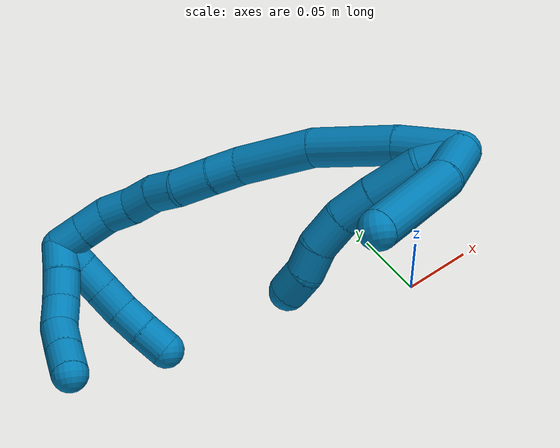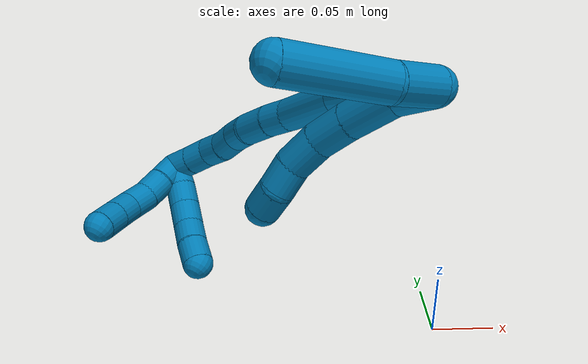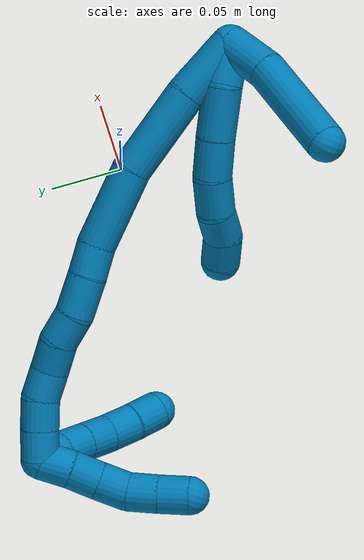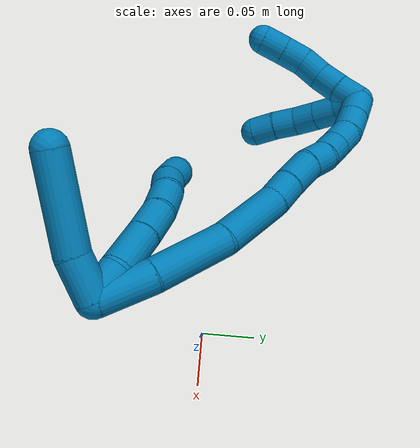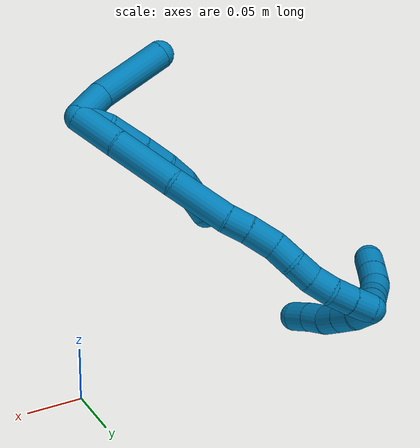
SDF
<sdf version="1.7">
 <world name="default">
  <model name="9">
   <static>0</static>
   <link name="9">
    <collision name="collision-cylinder-e_1_2_8">
     <pose>-0.012605 0.001674 -0.001843 -2.40419 -1.37579 2.26263</pose>
     <geometry><cylinder><radius>0.0125</radius><length>0.025697</length></cylinder></geometry>
     <surface>
      <friction><ode><mu>1.16</mu><mu2>1.16</mu2><slip1>0</slip1><slip2>0</slip2></ode></friction>
      <contact><ode><kp>1e+06</kp><kd>1</kd><max_vel>0</max_vel><min_depth>0.001</min_depth></ode></contact>
     </surface>
    </collision>
    <visual name="visual-cylinder-e_1_2_8">
     <pose>-0.012605 0.001674 -0.001843 -2.40419 -1.37579 2.26263</pose>
     <geometry><cylinder><radius>0.0125</radius><length>0.025697</length></cylinder></geometry>
     <material><ambient>0 0.490196 0.709804 1</ambient></material>
    </visual>
    <collision name="collision-cylinder-e_2_8_9">
     <pose>-0.040602 0.009014 -0.008451 -2.27007 -1.1225 1.86667</pose>
     <geometry><cylinder><radius>0.0125</radius><length>0.034159</length></cylinder></geometry>
     <surface>
      <friction><ode><mu>1.16</mu><mu2>1.16</mu2><slip1>0</slip1><slip2>0</slip2></ode></friction>
      <contact><ode><kp>1e+06</kp><kd>1</kd><max_vel>0</max_vel><min_depth>0.001</min_depth></ode></contact>
     </surface>
    </collision>
    <visual name="visual-cylinder-e_2_8_9">
     <pose>-0.040602 0.009014 -0.008451 -2.27007 -1.1225 1.86667</pose>
     <geometry><cylinder><radius>0.0125</radius><length>0.034159</length></cylinder></geometry>
     <material><ambient>0 0.490196 0.709804 1</ambient></material>
    </visual>
    <collision name="collision-cylinder-e_3_9_10">
     <pose>-0.067133 0.019235 -0.017544 -2.33056 -1.05712 1.87375</pose>
     <geometry><cylinder><radius>0.0125</radius><length>0.02558</length></cylinder></geometry>
     <surface>
      <friction><ode><mu>1.16</mu><mu2>1.16</mu2><slip1>0</slip1><slip2>0</slip2></ode></friction>
      <contact><ode><kp>1e+06</kp><kd>1</kd><max_vel>0</max_vel><min_depth>0.001</min_depth></ode></contact>
     </surface>
    </collision>
    <visual name="visual-cylinder-e_3_9_10">
     <pose>-0.067133 0.019235 -0.017544 -2.33056 -1.05712 1.87375</pose>
     <geometry><cylinder><radius>0.0125</radius><length>0.02558</length></cylinder></geometry>
     <material><ambient>0 0.490196 0.709804 1</ambient></material>
    </visual>
    <collision name="collision-cylinder-e_4_10_11">
     <pose>-0.087459 0.028674 -0.028196 -2.48411 -0.855006 1.85624</pose>
     <geometry><cylinder><radius>0.0125</radius><length>0.024347</length></cylinder></geometry>
     <surface>
      <friction><ode><mu>1.16</mu><mu2>1.16</mu2><slip1>0</slip1><slip2>0</slip2></ode></friction>
      <contact><ode><kp>1e+06</kp><kd>1</kd><max_vel>0</max_vel><min_depth>0.001</min_depth></ode></contact>
     </surface>
    </collision>
    <visual name="visual-cylinder-e_4_10_11">
     <pose>-0.087459 0.028674 -0.028196 -2.48411 -0.855006 1.85624</pose>
     <geometry><cylinder><radius>0.0125</radius><length>0.024347</length></cylinder></geometry>
     <material><ambient>0 0.490196 0.709804 1</ambient></material>
    </visual>
    <collision name="collision-cylinder-e_5_11_12">
     <pose>-0.102253 0.038559 -0.041144 -2.49482 -0.594165 1.48038</pose>
     <geometry><cylinder><radius>0.0125</radius><length>0.020037</length></cylinder></geometry>
     <surface>
      <friction><ode><mu>1.16</mu><mu2>1.16</mu2><slip1>0</slip1><slip2>0</slip2></ode></friction>
      <contact><ode><kp>1e+06</kp><kd>1</kd><max_vel>0</max_vel><min_depth>0.001</min_depth></ode></contact>
     </surface>
    </collision>
    <visual name="visual-cylinder-e_5_11_12">
     <pose>-0.102253 0.038559 -0.041144 -2.49482 -0.594165 1.48038</pose>
     <geometry><cylinder><radius>0.0125</radius><length>0.020037</length></cylinder></geometry>
     <material><ambient>0 0.490196 0.709804 1</ambient></material>
    </visual>
    <collision name="collision-cylinder-e_6_12_6">
     <pose>-0.11476 0.049704 -0.051829 -2.15482 -0.75281 1.26768</pose>
     <geometry><cylinder><radius>0.0125</radius><length>0.020179</length></cylinder></geometry>
     <surface>
      <friction><ode><mu>1.16</mu><mu2>1.16</mu2><slip1>0</slip1><slip2>0</slip2></ode></friction>
      <contact><ode><kp>1e+06</kp><kd>1</kd><max_vel>0</max_vel><min_depth>0.001</min_depth></ode></contact>
     </surface>
    </collision>
    <visual name="visual-cylinder-e_6_12_6">
     <pose>-0.11476 0.049704 -0.051829 -2.15482 -0.75281 1.26768</pose>
     <geometry><cylinder><radius>0.0125</radius><length>0.020179</length></cylinder></geometry>
     <material><ambient>0 0.490196 0.709804 1</ambient></material>
    </visual>
    <collision name="collision-cylinder-e_1_2_13">
     <pose>-0.006302 -0.01095 -0.009558 2.2884 -0.40912 -0.856415</pose>
     <geometry><cylinder><radius>0.0125</radius><length>0.031685</length></cylinder></geometry>
     <surface>
      <friction><ode><mu>1.16</mu><mu2>1.16</mu2><slip1>0</slip1><slip2>0</slip2></ode></friction>
      <contact><ode><kp>1e+06</kp><kd>1</kd><max_vel>0</max_vel><min_depth>0.001</min_depth></ode></contact>
     </surface>
    </collision>
    <visual name="visual-cylinder-e_1_2_13">
     <pose>-0.006302 -0.01095 -0.009558 2.2884 -0.40912 -0.856415</pose>
     <geometry><cylinder><radius>0.0125</radius><length>0.031685</length></cylinder></geometry>
     <material><ambient>0 0.490196 0.709804 1</ambient></material>
    </visual>
    <collision name="collision-cylinder-e_2_13_5">
     <pose>-0.032468 -0.044808 -0.034846 2.17251 -0.620605 -1.09426</pose>
     <geometry><cylinder><radius>0.0125</radius><length>0.068315</length></cylinder></geometry>
     <surface>
      <friction><ode><mu>1.16</mu><mu2>1.16</mu2><slip1>0</slip1><slip2>0</slip2></ode></friction>
      <contact><ode><kp>1e+06</kp><kd>1</kd><max_vel>0</max_vel><min_depth>0.001</min_depth></ode></contact>
     </surface>
    </collision>
    <visual name="visual-cylinder-e_2_13_5">
     <pose>-0.032468 -0.044808 -0.034846 2.17251 -0.620605 -1.09426</pose>
     <geometry><cylinder><radius>0.0125</radius><length>0.068315</length></cylinder></geometry>
     <material><ambient>0 0.490196 0.709804 1</ambient></material>
    </visual>
    <collision name="collision-cylinder-e_1_2_14">
     <pose>-0.018257 0.007204 0.007021 -0.798299 -1.06719 0.488408</pose>
     <geometry><cylinder><radius>0.0125</radius><length>0.04169</length></cylinder></geometry>
     <surface>
      <friction><ode><mu>1.16</mu><mu2>1.16</mu2><slip1>0</slip1><slip2>0</slip2></ode></friction>
      <contact><ode><kp>1e+06</kp><kd>1</kd><max_vel>0</max_vel><min_depth>0.001</min_depth></ode></contact>
     </surface>
    </collision>
    <visual name="visual-cylinder-e_1_2_14">
     <pose>-0.018257 0.007204 0.007021 -0.798299 -1.06719 0.488408</pose>
     <geometry><cylinder><radius>0.0125</radius><length>0.04169</length></cylinder></geometry>
     <material><ambient>0 0.490196 0.709804 1</ambient></material>
    </visual>
    <collision name="collision-cylinder-e_2_14_15">
     <pose>-0.062899 0.024737 0.020632 -1.00288 -1.13607 0.673071</pose>
     <geometry><cylinder><radius>0.0125</radius><length>0.058182</length></cylinder></geometry>
     <surface>
      <friction><ode><mu>1.16</mu><mu2>1.16</mu2><slip1>0</slip1><slip2>0</slip2></ode></friction>
      <contact><ode><kp>1e+06</kp><kd>1</kd><max_vel>0</max_vel><min_depth>0.001</min_depth></ode></contact>
     </surface>
    </collision>
    <visual name="visual-cylinder-e_2_14_15">
     <pose>-0.062899 0.024737 0.020632 -1.00288 -1.13607 0.673071</pose>
     <geometry><cylinder><radius>0.0125</radius><length>0.058182</length></cylinder></geometry>
     <material><ambient>0 0.490196 0.709804 1</ambient></material>
    </visual>
    <collision name="collision-cylinder-e_3_15_16">
     <pose>-0.113868 0.044511 0.028043 -1.48405 -1.20272 1.12302</pose>
     <geometry><cylinder><radius>0.0125</radius><length>0.052696</length></cylinder></geometry>
     <surface>
      <friction><ode><mu>1.16</mu><mu2>1.16</mu2><slip1>0</slip1><slip2>0</slip2></ode></friction>
      <contact><ode><kp>1e+06</kp><kd>1</kd><max_vel>0</max_vel><min_depth>0.001</min_depth></ode></contact>
     </surface>
    </collision>
    <visual name="visual-cylinder-e_3_15_16">
     <pose>-0.113868 0.044511 0.028043 -1.48405 -1.20272 1.12302</pose>
     <geometry><cylinder><radius>0.0125</radius><length>0.052696</length></cylinder></geometry>
     <material><ambient>0 0.490196 0.709804 1</ambient></material>
    </visual>
    <collision name="collision-cylinder-e_4_16_17">
     <pose>-0.148269 0.05638 0.02799 -1.9169 -1.31409 1.66432</pose>
     <geometry><cylinder><radius>0.0125</radius><length>0.020302</length></cylinder></geometry>
     <surface>
      <friction><ode><mu>1.16</mu><mu2>1.16</mu2><slip1>0</slip1><slip2>0</slip2></ode></friction>
      <contact><ode><kp>1e+06</kp><kd>1</kd><max_vel>0</max_vel><min_depth>0.001</min_depth></ode></contact>
     </surface>
    </collision>
    <visual name="visual-cylinder-e_4_16_17">
     <pose>-0.148269 0.05638 0.02799 -1.9169 -1.31409 1.66432</pose>
     <geometry><cylinder><radius>0.0125</radius><length>0.020302</length></cylinder></geometry>
     <material><ambient>0 0.490196 0.709804 1</ambient></material>
    </visual>
    <collision name="collision-cylinder-e_5_17_18">
     <pose>-0.170503 0.063063 0.026161 -1.79133 -1.23275 1.44877</pose>
     <geometry><cylinder><radius>0.0125</radius><length>0.026319</length></cylinder></geometry>
     <surface>
      <friction><ode><mu>1.16</mu><mu2>1.16</mu2><slip1>0</slip1><slip2>0</slip2></ode></friction>
      <contact><ode><kp>1e+06</kp><kd>1</kd><max_vel>0</max_vel><min_depth>0.001</min_depth></ode></contact>
     </surface>
    </collision>
    <visual name="visual-cylinder-e_5_17_18">
     <pose>-0.170503 0.063063 0.026161 -1.79133 -1.23275 1.44877</pose>
     <geometry><cylinder><radius>0.0125</radius><length>0.026319</length></cylinder></geometry>
     <material><ambient>0 0.490196 0.709804 1</ambient></material>
    </visual>
    <collision name="collision-cylinder-e_6_18_19">
     <pose>-0.191824 0.072316 0.026017 -1.40998 -1.05418 0.919618</pose>
     <geometry><cylinder><radius>0.0125</radius><length>0.020486</length></cylinder></geometry>
     <surface>
      <friction><ode><mu>1.16</mu><mu2>1.16</mu2><slip1>0</slip1><slip2>0</slip2></ode></friction>
      <contact><ode><kp>1e+06</kp><kd>1</kd><max_vel>0</max_vel><min_depth>0.001</min_depth></ode></contact>
     </surface>
    </collision>
    <visual name="visual-cylinder-e_6_18_19">
     <pose>-0.191824 0.072316 0.026017 -1.40998 -1.05418 0.919618</pose>
     <geometry><cylinder><radius>0.0125</radius><length>0.020486</length></cylinder></geometry>
     <material><ambient>0 0.490196 0.709804 1</ambient></material>
    </visual>
    <collision name="collision-cylinder-e_7_19_20">
     <pose>-0.209493 0.082148 0.025231 -1.88933 -1.0442 1.34406</pose>
     <geometry><cylinder><radius>0.0125</radius><length>0.020272</length></cylinder></geometry>
     <surface>
      <friction><ode><mu>1.16</mu><mu2>1.16</mu2><slip1>0</slip1><slip2>0</slip2></ode></friction>
      <contact><ode><kp>1e+06</kp><kd>1</kd><max_vel>0</max_vel><min_depth>0.001</min_depth></ode></contact>
     </surface>
    </collision>
    <visual name="visual-cylinder-e_7_19_20">
     <pose>-0.209493 0.082148 0.025231 -1.88933 -1.0442 1.34406</pose>
     <geometry><cylinder><radius>0.0125</radius><length>0.020272</length></cylinder></geometry>
     <material><ambient>0 0.490196 0.709804 1</ambient></material>
    </visual>
    <collision name="collision-cylinder-e_8_20_21">
     <pose>-0.227696 0.090198 0.02285 -1.81073 -1.23387 1.46975</pose>
     <geometry><cylinder><radius>0.0125</radius><length>0.020005</length></cylinder></geometry>
     <surface>
      <friction><ode><mu>1.16</mu><mu2>1.16</mu2><slip1>0</slip1><slip2>0</slip2></ode></friction>
      <contact><ode><kp>1e+06</kp><kd>1</kd><max_vel>0</max_vel><min_depth>0.001</min_depth></ode></contact>
     </surface>
    </collision>
    <visual name="visual-cylinder-e_8_20_21">
     <pose>-0.227696 0.090198 0.02285 -1.81073 -1.23387 1.46975</pose>
     <geometry><cylinder><radius>0.0125</radius><length>0.020005</length></cylinder></geometry>
     <material><ambient>0 0.490196 0.709804 1</ambient></material>
    </visual>
    <collision name="collision-cylinder-e_9_21_22">
     <pose>-0.246315 0.095476 0.018652 -2.59715 -1.16086 2.33671</pose>
     <geometry><cylinder><radius>0.0125</radius><length>0.020017</length></cylinder></geometry>
     <surface>
      <friction><ode><mu>1.16</mu><mu2>1.16</mu2><slip1>0</slip1><slip2>0</slip2></ode></friction>
      <contact><ode><kp>1e+06</kp><kd>1</kd><max_vel>0</max_vel><min_depth>0.001</min_depth></ode></contact>
     </surface>
    </collision>
    <visual name="visual-cylinder-e_9_21_22">
     <pose>-0.246315 0.095476 0.018652 -2.59715 -1.16086 2.33671</pose>
     <geometry><cylinder><radius>0.0125</radius><length>0.020017</length></cylinder></geometry>
     <material><ambient>0 0.490196 0.709804 1</ambient></material>
    </visual>
    <collision name="collision-cylinder-e_10_22_1">
     <pose>-0.26468 0.099203 0.011612 -2.71233 -1.16104 2.49987</pose>
     <geometry><cylinder><radius>0.0125</radius><length>0.020031</length></cylinder></geometry>
     <surface>
      <friction><ode><mu>1.16</mu><mu2>1.16</mu2><slip1>0</slip1><slip2>0</slip2></ode></friction>
      <contact><ode><kp>1e+06</kp><kd>1</kd><max_vel>0</max_vel><min_depth>0.001</min_depth></ode></contact>
     </surface>
    </collision>
    <visual name="visual-cylinder-e_10_22_1">
     <pose>-0.26468 0.099203 0.011612 -2.71233 -1.16104 2.49987</pose>
     <geometry><cylinder><radius>0.0125</radius><length>0.020031</length></cylinder></geometry>
     <material><ambient>0 0.490196 0.709804 1</ambient></material>
    </visual>
    <collision name="collision-cylinder-e_1_1_23">
     <pose>-0.268762 0.105371 0.000661 -2.58981 0.535751 -1.53981</pose>
     <geometry><cylinder><radius>0.0125</radius><length>0.02</length></cylinder></geometry>
     <surface>
      <friction><ode><mu>1.16</mu><mu2>1.16</mu2><slip1>0</slip1><slip2>0</slip2></ode></friction>
      <contact><ode><kp>1e+06</kp><kd>1</kd><max_vel>0</max_vel><min_depth>0.001</min_depth></ode></contact>
     </surface>
    </collision>
    <visual name="visual-cylinder-e_1_1_23">
     <pose>-0.268762 0.105371 0.000661 -2.58981 0.535751 -1.53981</pose>
     <geometry><cylinder><radius>0.0125</radius><length>0.02</length></cylinder></geometry>
     <material><ambient>0 0.490196 0.709804 1</ambient></material>
    </visual>
    <collision name="collision-cylinder-e_2_23_24">
     <pose>-0.258397 0.112749 -0.014667 -2.79735 0.553862 -2.04377</pose>
     <geometry><cylinder><radius>0.0125</radius><length>0.02</length></cylinder></geometry>
     <surface>
      <friction><ode><mu>1.16</mu><mu2>1.16</mu2><slip1>0</slip1><slip2>0</slip2></ode></friction>
      <contact><ode><kp>1e+06</kp><kd>1</kd><max_vel>0</max_vel><min_depth>0.001</min_depth></ode></contact>
     </surface>
    </collision>
    <visual name="visual-cylinder-e_2_23_24">
     <pose>-0.258397 0.112749 -0.014667 -2.79735 0.553862 -2.04377</pose>
     <geometry><cylinder><radius>0.0125</radius><length>0.02</length></cylinder></geometry>
     <material><ambient>0 0.490196 0.709804 1</ambient></material>
    </visual>
    <collision name="collision-cylinder-e_3_24_25">
     <pose>-0.247857 0.118389 -0.030701 -2.80932 0.556345 -2.07972</pose>
     <geometry><cylinder><radius>0.0125</radius><length>0.02</length></cylinder></geometry>
     <surface>
      <friction><ode><mu>1.16</mu><mu2>1.16</mu2><slip1>0</slip1><slip2>0</slip2></ode></friction>
      <contact><ode><kp>1e+06</kp><kd>1</kd><max_vel>0</max_vel><min_depth>0.001</min_depth></ode></contact>
     </surface>
    </collision>
    <visual name="visual-cylinder-e_3_24_25">
     <pose>-0.247857 0.118389 -0.030701 -2.80932 0.556345 -2.07972</pose>
     <geometry><cylinder><radius>0.0125</radius><length>0.02</length></cylinder></geometry>
     <material><ambient>0 0.490196 0.709804 1</ambient></material>
    </visual>
    <collision name="collision-cylinder-e_4_25_26">
     <pose>-0.236356 0.121956 -0.046518 -3.03961 0.67126 -2.85104</pose>
     <geometry><cylinder><radius>0.0125</radius><length>0.02</length></cylinder></geometry>
     <surface>
      <friction><ode><mu>1.16</mu><mu2>1.16</mu2><slip1>0</slip1><slip2>0</slip2></ode></friction>
      <contact><ode><kp>1e+06</kp><kd>1</kd><max_vel>0</max_vel><min_depth>0.001</min_depth></ode></contact>
     </surface>
    </collision>
    <visual name="visual-cylinder-e_4_25_26">
     <pose>-0.236356 0.121956 -0.046518 -3.03961 0.67126 -2.85104</pose>
     <geometry><cylinder><radius>0.0125</radius><length>0.02</length></cylinder></geometry>
     <material><ambient>0 0.490196 0.709804 1</ambient></material>
    </visual>
    <collision name="collision-cylinder-e_5_26_4">
     <pose>-0.223748 0.124418 -0.061819 -2.92357 0.693007 -2.55297</pose>
     <geometry><cylinder><radius>0.0125</radius><length>0.02</length></cylinder></geometry>
     <surface>
      <friction><ode><mu>1.16</mu><mu2>1.16</mu2><slip1>0</slip1><slip2>0</slip2></ode></friction>
      <contact><ode><kp>1e+06</kp><kd>1</kd><max_vel>0</max_vel><min_depth>0.001</min_depth></ode></contact>
     </surface>
    </collision>
    <visual name="visual-cylinder-e_5_26_4">
     <pose>-0.223748 0.124418 -0.061819 -2.92357 0.693007 -2.55297</pose>
     <geometry><cylinder><radius>0.0125</radius><length>0.02</length></cylinder></geometry>
     <material><ambient>0 0.490196 0.709804 1</ambient></material>
    </visual>
    <collision name="collision-cylinder-e_1_1_27">
     <pose>-0.274009 0.098347 -0.001693 2.88717 -0.014254 -0.111328</pose>
     <geometry><cylinder><radius>0.0125</radius><length>0.02</length></cylinder></geometry>
     <surface>
      <friction><ode><mu>1.16</mu><mu2>1.16</mu2><slip1>0</slip1><slip2>0</slip2></ode></friction>
      <contact><ode><kp>1e+06</kp><kd>1</kd><max_vel>0</max_vel><min_depth>0.001</min_depth></ode></contact>
     </surface>
    </collision>
    <visual name="visual-cylinder-e_1_1_27">
     <pose>-0.274009 0.098347 -0.001693 2.88717 -0.014254 -0.111328</pose>
     <geometry><cylinder><radius>0.0125</radius><length>0.02</length></cylinder></geometry>
     <material><ambient>0 0.490196 0.709804 1</ambient></material>
    </visual>
    <collision name="collision-cylinder-e_2_27_28">
     <pose>-0.275066 0.093726 -0.021103 2.92867 -0.091576 -0.810122</pose>
     <geometry><cylinder><radius>0.0125</radius><length>0.02</length></cylinder></geometry>
     <surface>
      <friction><ode><mu>1.16</mu><mu2>1.16</mu2><slip1>0</slip1><slip2>0</slip2></ode></friction>
      <contact><ode><kp>1e+06</kp><kd>1</kd><max_vel>0</max_vel><min_depth>0.001</min_depth></ode></contact>
     </surface>
    </collision>
    <visual name="visual-cylinder-e_2_27_28">
     <pose>-0.275066 0.093726 -0.021103 2.92867 -0.091576 -0.810122</pose>
     <geometry><cylinder><radius>0.0125</radius><length>0.02</length></cylinder></geometry>
     <material><ambient>0 0.490196 0.709804 1</ambient></material>
    </visual>
    <collision name="collision-cylinder-e_3_28_29">
     <pose>-0.276844 0.087522 -0.039917 2.71749 -0.086411 -0.396353</pose>
     <geometry><cylinder><radius>0.0125</radius><length>0.02</length></cylinder></geometry>
     <surface>
      <friction><ode><mu>1.16</mu><mu2>1.16</mu2><slip1>0</slip1><slip2>0</slip2></ode></friction>
      <contact><ode><kp>1e+06</kp><kd>1</kd><max_vel>0</max_vel><min_depth>0.001</min_depth></ode></contact>
     </surface>
    </collision>
    <visual name="visual-cylinder-e_3_28_29">
     <pose>-0.276844 0.087522 -0.039917 2.71749 -0.086411 -0.396353</pose>
     <geometry><cylinder><radius>0.0125</radius><length>0.02</length></cylinder></geometry>
     <material><ambient>0 0.490196 0.709804 1</ambient></material>
    </visual>
    <collision name="collision-cylinder-e_4_29_30">
     <pose>-0.275856 0.078464 -0.057481 2.61268 0.186125 0.663813</pose>
     <geometry><cylinder><radius>0.0125</radius><length>0.02</length></cylinder></geometry>
     <surface>
      <friction><ode><mu>1.16</mu><mu2>1.16</mu2><slip1>0</slip1><slip2>0</slip2></ode></friction>
      <contact><ode><kp>1e+06</kp><kd>1</kd><max_vel>0</max_vel><min_depth>0.001</min_depth></ode></contact>
     </surface>
    </collision>
    <visual name="visual-cylinder-e_4_29_30">
     <pose>-0.275856 0.078464 -0.057481 2.61268 0.186125 0.663813</pose>
     <geometry><cylinder><radius>0.0125</radius><length>0.02</length></cylinder></geometry>
     <material><ambient>0 0.490196 0.709804 1</ambient></material>
    </visual>
    <collision name="collision-cylinder-e_5_30_3">
     <pose>-0.271887 0.068512 -0.074367 2.60542 0.213483 0.743816</pose>
     <geometry><cylinder><radius>0.0125</radius><length>0.02</length></cylinder></geometry>
     <surface>
      <friction><ode><mu>1.16</mu><mu2>1.16</mu2><slip1>0</slip1><slip2>0</slip2></ode></friction>
      <contact><ode><kp>1e+06</kp><kd>1</kd><max_vel>0</max_vel><min_depth>0.001</min_depth></ode></contact>
     </surface>
    </collision>
    <visual name="visual-cylinder-e_5_30_3">
     <pose>-0.271887 0.068512 -0.074367 2.60542 0.213483 0.743816</pose>
     <geometry><cylinder><radius>0.0125</radius><length>0.02</length></cylinder></geometry>
     <material><ambient>0 0.490196 0.709804 1</ambient></material>
    </visual>
    <collision name="collision-sphere-3">
     <pose>-0.269769 0.06352 -0.082769 0 -0 0</pose>
     <geometry><sphere><radius>0.0125</radius></sphere></geometry>
     <surface>
      <friction><ode><mu>1.16</mu><mu2>1.16</mu2><slip1>0</slip1><slip2>0</slip2></ode></friction>
      <contact><ode><kp>1e+06</kp><kd>1</kd><max_vel>0</max_vel><min_depth>0.001</min_depth></ode></contact>
     </surface>
    </collision>
    <visual name="visual-sphere-3">
     <pose>-0.269769 0.06352 -0.082769 0 -0 0</pose>
     <geometry><sphere><radius>0.0125</radius></sphere></geometry>
     <material><ambient>0 0.490196 0.709804 1</ambient></material>
    </visual>
    <collision name="collision-sphere-30">
     <pose>-0.274006 0.073505 -0.065966 0 -0 0</pose>
     <geometry><sphere><radius>0.0125</radius></sphere></geometry>
     <surface>
      <friction><ode><mu>1.16</mu><mu2>1.16</mu2><slip1>0</slip1><slip2>0</slip2></ode></friction>
      <contact><ode><kp>1e+06</kp><kd>1</kd><max_vel>0</max_vel><min_depth>0.001</min_depth></ode></contact>
     </surface>
    </collision>
    <visual name="visual-sphere-30">
     <pose>-0.274006 0.073505 -0.065966 0 -0 0</pose>
     <geometry><sphere><radius>0.0125</radius></sphere></geometry>
     <material><ambient>0 0.490196 0.709804 1</ambient></material>
    </visual>
    <collision name="collision-sphere-29">
     <pose>-0.277707 0.083422 -0.048997 0 -0 0</pose>
     <geometry><sphere><radius>0.0125</radius></sphere></geometry>
     <surface>
      <friction><ode><mu>1.16</mu><mu2>1.16</mu2><slip1>0</slip1><slip2>0</slip2></ode></friction>
      <contact><ode><kp>1e+06</kp><kd>1</kd><max_vel>0</max_vel><min_depth>0.001</min_depth></ode></contact>
     </surface>
    </collision>
    <visual name="visual-sphere-29">
     <pose>-0.277707 0.083422 -0.048997 0 -0 0</pose>
     <geometry><sphere><radius>0.0125</radius></sphere></geometry>
     <material><ambient>0 0.490196 0.709804 1</ambient></material>
    </visual>
    <collision name="collision-sphere-28">
     <pose>-0.275981 0.091622 -0.030836 0 -0 0</pose>
     <geometry><sphere><radius>0.0125</radius></sphere></geometry>
     <surface>
      <friction><ode><mu>1.16</mu><mu2>1.16</mu2><slip1>0</slip1><slip2>0</slip2></ode></friction>
      <contact><ode><kp>1e+06</kp><kd>1</kd><max_vel>0</max_vel><min_depth>0.001</min_depth></ode></contact>
     </surface>
    </collision>
    <visual name="visual-sphere-28">
     <pose>-0.275981 0.091622 -0.030836 0 -0 0</pose>
     <geometry><sphere><radius>0.0125</radius></sphere></geometry>
     <material><ambient>0 0.490196 0.709804 1</ambient></material>
    </visual>
    <collision name="collision-sphere-27">
     <pose>-0.274152 0.09583 -0.01137 0 -0 0</pose>
     <geometry><sphere><radius>0.0125</radius></sphere></geometry>
     <surface>
      <friction><ode><mu>1.16</mu><mu2>1.16</mu2><slip1>0</slip1><slip2>0</slip2></ode></friction>
      <contact><ode><kp>1e+06</kp><kd>1</kd><max_vel>0</max_vel><min_depth>0.001</min_depth></ode></contact>
     </surface>
    </collision>
    <visual name="visual-sphere-27">
     <pose>-0.274152 0.09583 -0.01137 0 -0 0</pose>
     <geometry><sphere><radius>0.0125</radius></sphere></geometry>
     <material><ambient>0 0.490196 0.709804 1</ambient></material>
    </visual>
    <collision name="collision-sphere-4">
     <pose>-0.217359 0.126082 -0.06933 0 -0 0</pose>
     <geometry><sphere><radius>0.0125</radius></sphere></geometry>
     <surface>
      <friction><ode><mu>1.16</mu><mu2>1.16</mu2><slip1>0</slip1><slip2>0</slip2></ode></friction>
      <contact><ode><kp>1e+06</kp><kd>1</kd><max_vel>0</max_vel><min_depth>0.001</min_depth></ode></contact>
     </surface>
    </collision>
    <visual name="visual-sphere-4">
     <pose>-0.217359 0.126082 -0.06933 0 -0 0</pose>
     <geometry><sphere><radius>0.0125</radius></sphere></geometry>
     <material><ambient>0 0.490196 0.709804 1</ambient></material>
    </visual>
    <collision name="collision-sphere-26">
     <pose>-0.230136 0.122754 -0.054308 0 -0 0</pose>
     <geometry><sphere><radius>0.0125</radius></sphere></geometry>
     <surface>
      <friction><ode><mu>1.16</mu><mu2>1.16</mu2><slip1>0</slip1><slip2>0</slip2></ode></friction>
      <contact><ode><kp>1e+06</kp><kd>1</kd><max_vel>0</max_vel><min_depth>0.001</min_depth></ode></contact>
     </surface>
    </collision>
    <visual name="visual-sphere-26">
     <pose>-0.230136 0.122754 -0.054308 0 -0 0</pose>
     <geometry><sphere><radius>0.0125</radius></sphere></geometry>
     <material><ambient>0 0.490196 0.709804 1</ambient></material>
    </visual>
    <collision name="collision-sphere-25">
     <pose>-0.242576 0.121159 -0.038728 0 -0 0</pose>
     <geometry><sphere><radius>0.0125</radius></sphere></geometry>
     <surface>
      <friction><ode><mu>1.16</mu><mu2>1.16</mu2><slip1>0</slip1><slip2>0</slip2></ode></friction>
      <contact><ode><kp>1e+06</kp><kd>1</kd><max_vel>0</max_vel><min_depth>0.001</min_depth></ode></contact>
     </surface>
    </collision>
    <visual name="visual-sphere-25">
     <pose>-0.242576 0.121159 -0.038728 0 -0 0</pose>
     <geometry><sphere><radius>0.0125</radius></sphere></geometry>
     <material><ambient>0 0.490196 0.709804 1</ambient></material>
    </visual>
    <collision name="collision-sphere-24">
     <pose>-0.253138 0.115619 -0.022673 0 -0 0</pose>
     <geometry><sphere><radius>0.0125</radius></sphere></geometry>
     <surface>
      <friction><ode><mu>1.16</mu><mu2>1.16</mu2><slip1>0</slip1><slip2>0</slip2></ode></friction>
      <contact><ode><kp>1e+06</kp><kd>1</kd><max_vel>0</max_vel><min_depth>0.001</min_depth></ode></contact>
     </surface>
    </collision>
    <visual name="visual-sphere-24">
     <pose>-0.253138 0.115619 -0.022673 0 -0 0</pose>
     <geometry><sphere><radius>0.0125</radius></sphere></geometry>
     <material><ambient>0 0.490196 0.709804 1</ambient></material>
    </visual>
    <collision name="collision-sphere-23">
     <pose>-0.263657 0.109879 -0.006661 0 -0 0</pose>
     <geometry><sphere><radius>0.0125</radius></sphere></geometry>
     <surface>
      <friction><ode><mu>1.16</mu><mu2>1.16</mu2><slip1>0</slip1><slip2>0</slip2></ode></friction>
      <contact><ode><kp>1e+06</kp><kd>1</kd><max_vel>0</max_vel><min_depth>0.001</min_depth></ode></contact>
     </surface>
    </collision>
    <visual name="visual-sphere-23">
     <pose>-0.263657 0.109879 -0.006661 0 -0 0</pose>
     <geometry><sphere><radius>0.0125</radius></sphere></geometry>
     <material><ambient>0 0.490196 0.709804 1</ambient></material>
    </visual>
    <collision name="collision-sphere-1">
     <pose>-0.273867 0.100863 0.007984 0 -0 0</pose>
     <geometry><sphere><radius>0.0125</radius></sphere></geometry>
     <surface>
      <friction><ode><mu>1.16</mu><mu2>1.16</mu2><slip1>0</slip1><slip2>0</slip2></ode></friction>
      <contact><ode><kp>1e+06</kp><kd>1</kd><max_vel>0</max_vel><min_depth>0.001</min_depth></ode></contact>
     </surface>
    </collision>
    <visual name="visual-sphere-1">
     <pose>-0.273867 0.100863 0.007984 0 -0 0</pose>
     <geometry><sphere><radius>0.0125</radius></sphere></geometry>
     <material><ambient>0 0.490196 0.709804 1</ambient></material>
    </visual>
    <collision name="collision-sphere-22">
     <pose>-0.255494 0.097542 0.01524 0 -0 0</pose>
     <geometry><sphere><radius>0.0125</radius></sphere></geometry>
     <surface>
      <friction><ode><mu>1.16</mu><mu2>1.16</mu2><slip1>0</slip1><slip2>0</slip2></ode></friction>
      <contact><ode><kp>1e+06</kp><kd>1</kd><max_vel>0</max_vel><min_depth>0.001</min_depth></ode></contact>
     </surface>
    </collision>
    <visual name="visual-sphere-22">
     <pose>-0.255494 0.097542 0.01524 0 -0 0</pose>
     <geometry><sphere><radius>0.0125</radius></sphere></geometry>
     <material><ambient>0 0.490196 0.709804 1</ambient></material>
    </visual>
    <collision name="collision-sphere-21">
     <pose>-0.237136 0.09341 0.022064 0 -0 0</pose>
     <geometry><sphere><radius>0.0125</radius></sphere></geometry>
     <surface>
      <friction><ode><mu>1.16</mu><mu2>1.16</mu2><slip1>0</slip1><slip2>0</slip2></ode></friction>
      <contact><ode><kp>1e+06</kp><kd>1</kd><max_vel>0</max_vel><min_depth>0.001</min_depth></ode></contact>
     </surface>
    </collision>
    <visual name="visual-sphere-21">
     <pose>-0.237136 0.09341 0.022064 0 -0 0</pose>
     <geometry><sphere><radius>0.0125</radius></sphere></geometry>
     <material><ambient>0 0.490196 0.709804 1</ambient></material>
    </visual>
    <collision name="collision-sphere-12">
     <pose>-0.107862 0.043561 -0.047769 0 -0 0</pose>
     <geometry><sphere><radius>0.0125</radius></sphere></geometry>
     <surface>
      <friction><ode><mu>1.16</mu><mu2>1.16</mu2><slip1>0</slip1><slip2>0</slip2></ode></friction>
      <contact><ode><kp>1e+06</kp><kd>1</kd><max_vel>0</max_vel><min_depth>0.001</min_depth></ode></contact>
     </surface>
    </collision>
    <visual name="visual-sphere-12">
     <pose>-0.107862 0.043561 -0.047769 0 -0 0</pose>
     <geometry><sphere><radius>0.0125</radius></sphere></geometry>
     <material><ambient>0 0.490196 0.709804 1</ambient></material>
    </visual>
    <collision name="collision-sphere-11">
     <pose>-0.096645 0.033556 -0.03452 0 -0 0</pose>
     <geometry><sphere><radius>0.0125</radius></sphere></geometry>
     <surface>
      <friction><ode><mu>1.16</mu><mu2>1.16</mu2><slip1>0</slip1><slip2>0</slip2></ode></friction>
      <contact><ode><kp>1e+06</kp><kd>1</kd><max_vel>0</max_vel><min_depth>0.001</min_depth></ode></contact>
     </surface>
    </collision>
    <visual name="visual-sphere-11">
     <pose>-0.096645 0.033556 -0.03452 0 -0 0</pose>
     <geometry><sphere><radius>0.0125</radius></sphere></geometry>
     <material><ambient>0 0.490196 0.709804 1</ambient></material>
    </visual>
    <collision name="collision-sphere-10">
     <pose>-0.078273 0.023792 -0.021873 0 -0 0</pose>
     <geometry><sphere><radius>0.0125</radius></sphere></geometry>
     <surface>
      <friction><ode><mu>1.16</mu><mu2>1.16</mu2><slip1>0</slip1><slip2>0</slip2></ode></friction>
      <contact><ode><kp>1e+06</kp><kd>1</kd><max_vel>0</max_vel><min_depth>0.001</min_depth></ode></contact>
     </surface>
    </collision>
    <visual name="visual-sphere-10">
     <pose>-0.078273 0.023792 -0.021873 0 -0 0</pose>
     <geometry><sphere><radius>0.0125</radius></sphere></geometry>
     <material><ambient>0 0.490196 0.709804 1</ambient></material>
    </visual>
    <collision name="collision-sphere-9">
     <pose>-0.055994 0.014679 -0.013216 0 -0 0</pose>
     <geometry><sphere><radius>0.0125</radius></sphere></geometry>
     <surface>
      <friction><ode><mu>1.16</mu><mu2>1.16</mu2><slip1>0</slip1><slip2>0</slip2></ode></friction>
      <contact><ode><kp>1e+06</kp><kd>1</kd><max_vel>0</max_vel><min_depth>0.001</min_depth></ode></contact>
     </surface>
    </collision>
    <visual name="visual-sphere-9">
     <pose>-0.055994 0.014679 -0.013216 0 -0 0</pose>
     <geometry><sphere><radius>0.0125</radius></sphere></geometry>
     <material><ambient>0 0.490196 0.709804 1</ambient></material>
    </visual>
    <collision name="collision-sphere-2">
     <geometry><sphere><radius>0.0125</radius></sphere></geometry>
     <surface>
      <friction><ode><mu>1.16</mu><mu2>1.16</mu2><slip1>0</slip1><slip2>0</slip2></ode></friction>
      <contact><ode><kp>1e+06</kp><kd>1</kd><max_vel>0</max_vel><min_depth>0.001</min_depth></ode></contact>
     </surface>
    </collision>
    <visual name="visual-sphere-2">
     <geometry><sphere><radius>0.0125</radius></sphere></geometry>
     <material><ambient>0 0.490196 0.709804 1</ambient></material>
    </visual>
    <collision name="collision-sphere-19">
     <pose>-0.20073 0.07731 0.026827 0 -0 0</pose>
     <geometry><sphere><radius>0.0125</radius></sphere></geometry>
     <surface>
      <friction><ode><mu>1.16</mu><mu2>1.16</mu2><slip1>0</slip1><slip2>0</slip2></ode></friction>
      <contact><ode><kp>1e+06</kp><kd>1</kd><max_vel>0</max_vel><min_depth>0.001</min_depth></ode></contact>
     </surface>
    </collision>
    <visual name="visual-sphere-19">
     <pose>-0.20073 0.07731 0.026827 0 -0 0</pose>
     <geometry><sphere><radius>0.0125</radius></sphere></geometry>
     <material><ambient>0 0.490196 0.709804 1</ambient></material>
    </visual>
    <collision name="collision-sphere-8">
     <pose>-0.02521 0.003348 -0.003686 0 -0 0</pose>
     <geometry><sphere><radius>0.0125</radius></sphere></geometry>
     <surface>
      <friction><ode><mu>1.16</mu><mu2>1.16</mu2><slip1>0</slip1><slip2>0</slip2></ode></friction>
      <contact><ode><kp>1e+06</kp><kd>1</kd><max_vel>0</max_vel><min_depth>0.001</min_depth></ode></contact>
     </surface>
    </collision>
    <visual name="visual-sphere-8">
     <pose>-0.02521 0.003348 -0.003686 0 -0 0</pose>
     <geometry><sphere><radius>0.0125</radius></sphere></geometry>
     <material><ambient>0 0.490196 0.709804 1</ambient></material>
    </visual>
    <collision name="collision-sphere-6">
     <pose>-0.121658 0.055846 -0.055889 0 -0 0</pose>
     <geometry><sphere><radius>0.0125</radius></sphere></geometry>
     <surface>
      <friction><ode><mu>1.16</mu><mu2>1.16</mu2><slip1>0</slip1><slip2>0</slip2></ode></friction>
      <contact><ode><kp>1e+06</kp><kd>1</kd><max_vel>0</max_vel><min_depth>0.001</min_depth></ode></contact>
     </surface>
    </collision>
    <visual name="visual-sphere-6">
     <pose>-0.121658 0.055846 -0.055889 0 -0 0</pose>
     <geometry><sphere><radius>0.0125</radius></sphere></geometry>
     <material><ambient>0 0.490196 0.709804 1</ambient></material>
    </visual>
    <collision name="collision-sphere-13">
     <pose>-0.012604 -0.021901 -0.019116 0 -0 0</pose>
     <geometry><sphere><radius>0.0125</radius></sphere></geometry>
     <surface>
      <friction><ode><mu>1.16</mu><mu2>1.16</mu2><slip1>0</slip1><slip2>0</slip2></ode></friction>
      <contact><ode><kp>1e+06</kp><kd>1</kd><max_vel>0</max_vel><min_depth>0.001</min_depth></ode></contact>
     </surface>
    </collision>
    <visual name="visual-sphere-13">
     <pose>-0.012604 -0.021901 -0.019116 0 -0 0</pose>
     <geometry><sphere><radius>0.0125</radius></sphere></geometry>
     <material><ambient>0 0.490196 0.709804 1</ambient></material>
    </visual>
    <collision name="collision-sphere-5">
     <pose>-0.052331 -0.067716 -0.050575 0 -0 0</pose>
     <geometry><sphere><radius>0.0125</radius></sphere></geometry>
     <surface>
      <friction><ode><mu>1.16</mu><mu2>1.16</mu2><slip1>0</slip1><slip2>0</slip2></ode></friction>
      <contact><ode><kp>1e+06</kp><kd>1</kd><max_vel>0</max_vel><min_depth>0.001</min_depth></ode></contact>
     </surface>
    </collision>
    <visual name="visual-sphere-5">
     <pose>-0.052331 -0.067716 -0.050575 0 -0 0</pose>
     <geometry><sphere><radius>0.0125</radius></sphere></geometry>
     <material><ambient>0 0.490196 0.709804 1</ambient></material>
    </visual>
    <collision name="collision-sphere-14">
     <pose>-0.036514 0.014409 0.014042 0 -0 0</pose>
     <geometry><sphere><radius>0.0125</radius></sphere></geometry>
     <surface>
      <friction><ode><mu>1.16</mu><mu2>1.16</mu2><slip1>0</slip1><slip2>0</slip2></ode></friction>
      <contact><ode><kp>1e+06</kp><kd>1</kd><max_vel>0</max_vel><min_depth>0.001</min_depth></ode></contact>
     </surface>
    </collision>
    <visual name="visual-sphere-14">
     <pose>-0.036514 0.014409 0.014042 0 -0 0</pose>
     <geometry><sphere><radius>0.0125</radius></sphere></geometry>
     <material><ambient>0 0.490196 0.709804 1</ambient></material>
    </visual>
    <collision name="collision-sphere-15">
     <pose>-0.089284 0.035066 0.027222 0 -0 0</pose>
     <geometry><sphere><radius>0.0125</radius></sphere></geometry>
     <surface>
      <friction><ode><mu>1.16</mu><mu2>1.16</mu2><slip1>0</slip1><slip2>0</slip2></ode></friction>
      <contact><ode><kp>1e+06</kp><kd>1</kd><max_vel>0</max_vel><min_depth>0.001</min_depth></ode></contact>
     </surface>
    </collision>
    <visual name="visual-sphere-15">
     <pose>-0.089284 0.035066 0.027222 0 -0 0</pose>
     <geometry><sphere><radius>0.0125</radius></sphere></geometry>
     <material><ambient>0 0.490196 0.709804 1</ambient></material>
    </visual>
    <collision name="collision-sphere-16">
     <pose>-0.138451 0.053956 0.028865 0 -0 0</pose>
     <geometry><sphere><radius>0.0125</radius></sphere></geometry>
     <surface>
      <friction><ode><mu>1.16</mu><mu2>1.16</mu2><slip1>0</slip1><slip2>0</slip2></ode></friction>
      <contact><ode><kp>1e+06</kp><kd>1</kd><max_vel>0</max_vel><min_depth>0.001</min_depth></ode></contact>
     </surface>
    </collision>
    <visual name="visual-sphere-16">
     <pose>-0.138451 0.053956 0.028865 0 -0 0</pose>
     <geometry><sphere><radius>0.0125</radius></sphere></geometry>
     <material><ambient>0 0.490196 0.709804 1</ambient></material>
    </visual>
    <collision name="collision-sphere-17">
     <pose>-0.158088 0.058805 0.027116 0 -0 0</pose>
     <geometry><sphere><radius>0.0125</radius></sphere></geometry>
     <surface>
      <friction><ode><mu>1.16</mu><mu2>1.16</mu2><slip1>0</slip1><slip2>0</slip2></ode></friction>
      <contact><ode><kp>1e+06</kp><kd>1</kd><max_vel>0</max_vel><min_depth>0.001</min_depth></ode></contact>
     </surface>
    </collision>
    <visual name="visual-sphere-17">
     <pose>-0.158088 0.058805 0.027116 0 -0 0</pose>
     <geometry><sphere><radius>0.0125</radius></sphere></geometry>
     <material><ambient>0 0.490196 0.709804 1</ambient></material>
    </visual>
    <collision name="collision-sphere-18">
     <pose>-0.182918 0.067322 0.025206 0 -0 0</pose>
     <geometry><sphere><radius>0.0125</radius></sphere></geometry>
     <surface>
      <friction><ode><mu>1.16</mu><mu2>1.16</mu2><slip1>0</slip1><slip2>0</slip2></ode></friction>
      <contact><ode><kp>1e+06</kp><kd>1</kd><max_vel>0</max_vel><min_depth>0.001</min_depth></ode></contact>
     </surface>
    </collision>
    <visual name="visual-sphere-18">
     <pose>-0.182918 0.067322 0.025206 0 -0 0</pose>
     <geometry><sphere><radius>0.0125</radius></sphere></geometry>
     <material><ambient>0 0.490196 0.709804 1</ambient></material>
    </visual>
    <collision name="collision-sphere-20">
     <pose>-0.218256 0.086986 0.023636 0 -0 0</pose>
     <geometry><sphere><radius>0.0125</radius></sphere></geometry>
     <surface>
      <friction><ode><mu>1.16</mu><mu2>1.16</mu2><slip1>0</slip1><slip2>0</slip2></ode></friction>
      <contact><ode><kp>1e+06</kp><kd>1</kd><max_vel>0</max_vel><min_depth>0.001</min_depth></ode></contact>
     </surface>
    </collision>
    <visual name="visual-sphere-20">
     <pose>-0.218256 0.086986 0.023636 0 -0 0</pose>
     <geometry><sphere><radius>0.0125</radius></sphere></geometry>
     <material><ambient>0 0.490196 0.709804 1</ambient></material>
    </visual>
    <inertial>
     <pose>-0.140531 0.047782 -0.008856 0 -0 0</pose>
     <mass>0.75</mass>
     <inertia><ixx>-1e-05</ixx><ixy>0</ixy><ixz>0</ixz><iyy>6e-05</iyy><iyz>0</iyz><izz>5.3e-05</izz></inertia>
    </inertial>
   </link>
   <pose>-0.034404 -0.064349 0.232454 -1.09409 -0.204385 -0.579624</pose>
  </model>
 </world>
</sdf>
